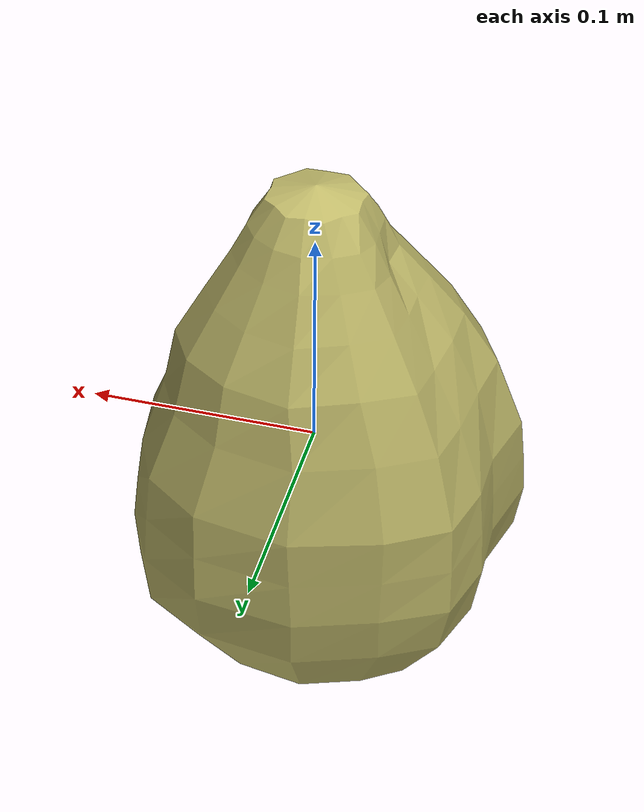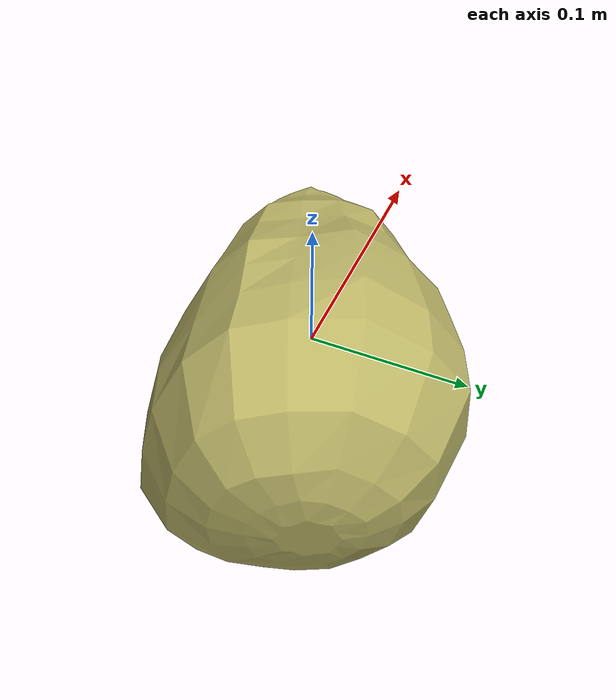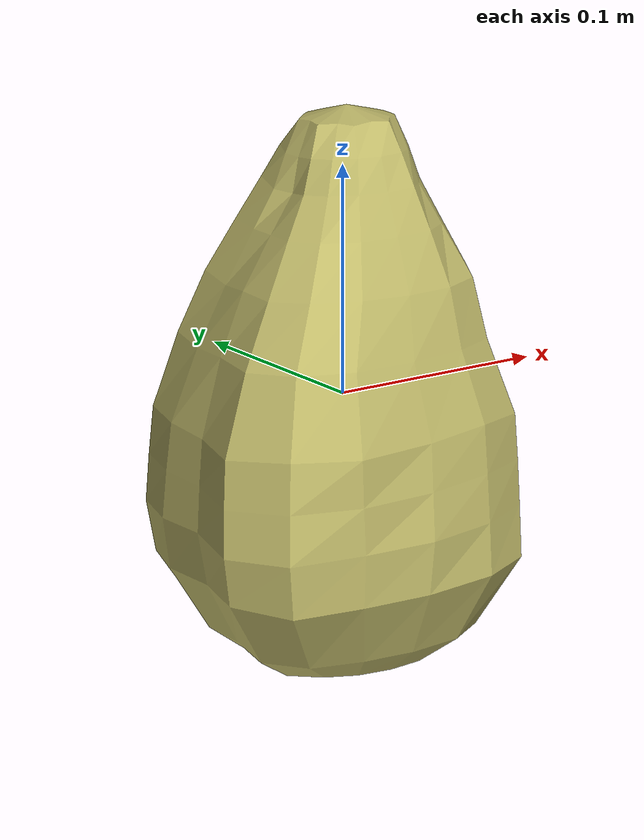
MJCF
<mujoco model="Lettuce_6">
  <compiler autolimits="true" boundmass="0.01" angle="radian"/>
  <default>
    <default class="/">
      <default class="__VISUAL_MJT__">
        <geom contype="0" conaffinity="0" group="0"/>
      </default>
      <default class="__STRUCTURAL_MJT__">
        <geom contype="8" conaffinity="15" group="4" friction="0.90000000000000002 0.90000000000000002 0.001" solref="0.025000000000000001 1" solimp="0.998 0.998 0.001"/>
      </default>
      <default class="__DYNAMIC_MJT__">
        <geom contype="1" conaffinity="15" group="4" friction="0.90000000000000002 0.90000000000000002 0.001" solref="0.025000000000000001 1" solimp="0.998 0.998 0.001"/>
      </default>
    </default>
  </default>
  <asset>
    <texture name="Lettuce1_Mat" type="2d" file="Lettuce1_AlbedoTransparency.png"/>
    <material name="material_Lettuce1_Mat" class="/" texture="Lettuce1_Mat" specular="0.5" shininess="0.5" rgba="0.9945233 1 0.60294119999999995 1"/>
    <mesh name="Lettuce_6_lettuce_a6" class="/" file="Lettuce_6_lettuce_a6/Lettuce_6_lettuce_a6.obj" scale="1 1 1"/>
  </asset>
  <worldbody>
    <body name="Lettuce_6">
      <joint name="Lettuce_6_free" class="/" type="free" pos="0 0 0" axis="0 0 1" stiffness="0" range="0 0" armature="0" damping="0.10000000000000001" frictionloss="0"/>
      <body name="Lettuce_6_lettuce_a6" pos="-0.00064999999999999997 0.0030799999999999998 0.0038400000000000001" quat="1 0 0 0">
        <geom name="Lettuce_6_lettuce_a6" class="__VISUAL_MJT__" type="mesh" material="material_Lettuce1_Mat" shellinertia="true" mesh="Lettuce_6_lettuce_a6"/>
        <geom name="Lettuce_6_PrimitiveCollider_0" class="__DYNAMIC_MJT__" type="capsule" size="0.07806888222694397 0.025550663471221924" rgba="0 1 0 1" pos="-0.0028230166062712669 -0.003080862108618021 -0.029061615467071533" quat="0.99999999999891198 1.4751396607739272e-06 0 0"/>
        <geom name="Lettuce_6_PrimitiveCollider_1" class="__DYNAMIC_MJT__" type="capsule" size="0.045269306749105453 0.019989397376775742" rgba="0 1 0 1" pos="0.012131212279200554 -0.007896721363067627 0.059735432267189026" quat="0.99999999999891198 1.4751396607739272e-06 0 0"/>
      </body>
    </body>
  </worldbody>
</mujoco>
